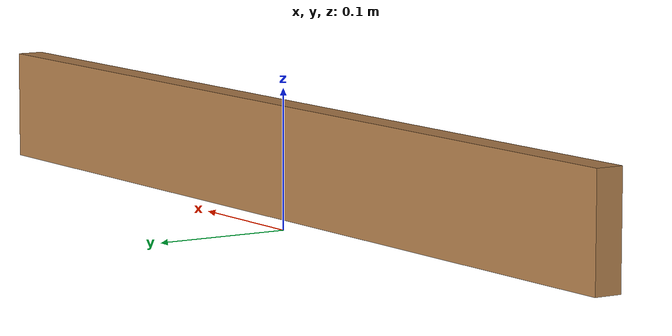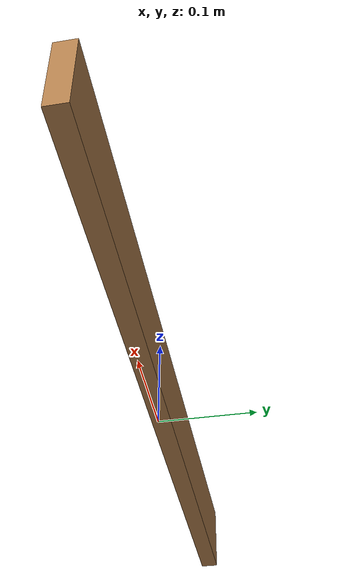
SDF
<?xml version="1.0" ?>
<sdf version="1.5">
  <model name="static_thing">
    <static>true</static>
    <link name="link">
      <collision name="surface">
        <pose>0 0 0.04 0 0 0</pose>
        <geometry>
          <box>
            <size>0.731 0.02 0.08</size>
          </box>
        </geometry>
        <surface>
          <friction>
            <ode>
              <mu>0.6</mu>
              <mu2>0.6</mu2>
            </ode>
          </friction>
        </surface>
      </collision>
      <visual name="visual1">
        <pose>0 0 0.05 0 0 0</pose>
        <geometry>
          <box>
            <size>0.731 0.02 0.08</size>
          </box>
        </geometry>
        <material>
          <script>
            <uri>file://media/materials/scripts/gazebo.material</uri>
            <name>Gazebo/Wood</name>
          </script>
        </material>
      </visual>
    </link>
  </model>
</sdf>
